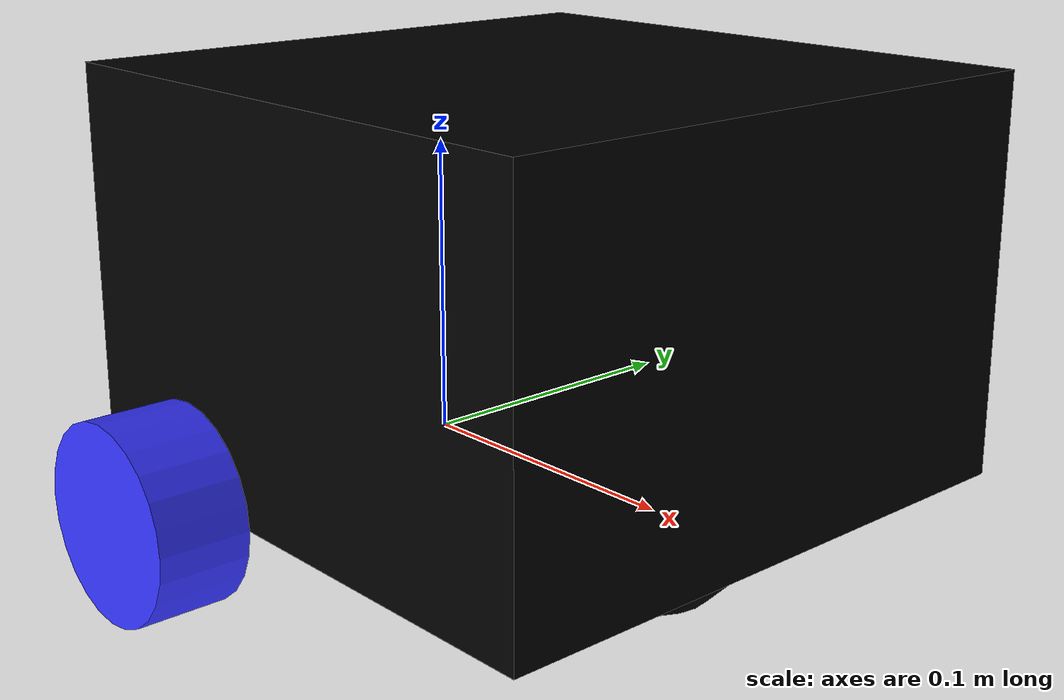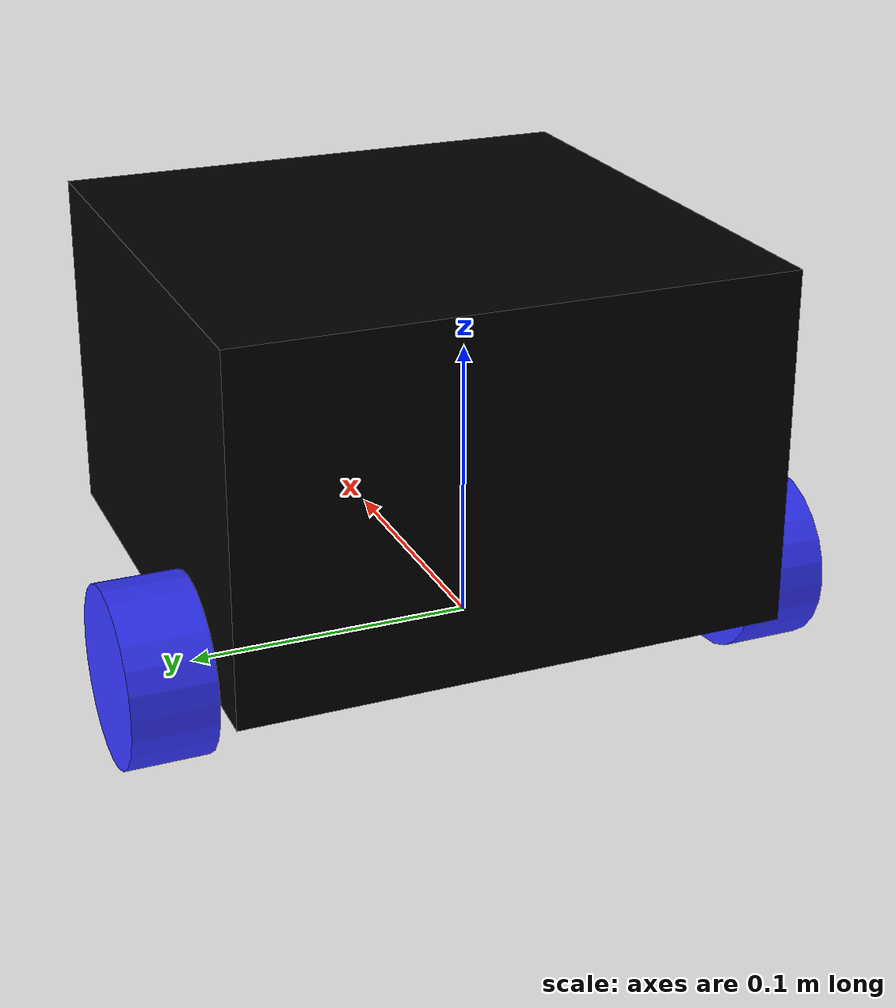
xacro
<?xml version="1.0"?>
<robot xmlns:xacro="http://www.ros.org/wiki/xacro" >

    <xacro:include filename="inertial_macros.xacro" />

    <material name="white" >
        <color rgba="1 1 1 1" />
    </material>
    <material name="orange" >
        <color rgba="1 0.3 0.1 1" />
    </material>
    <material name="blue" >
        <color rgba="0.2 0.2 1 1" />
    </material>
    <material name="black" >
        <color rgba="0 0 0 1" />
    </material>
    <material name="red" >
        <color rgba="1 0 0 1" />
    </material>

    <!--BASE LINK-->
    <link name="base_link"></link>

    <!--CHASSIS LINK-->
    <joint name="chassis_joint" type="fixed">
        <parent link="base_link" />
        <child link="chassis" />
        <origin xyz="-0.1 0 0" />
    </joint>

    <link name="chassis">
        <visual>
        <origin xyz="0.15 0 0.065" />
            <geometry>
                <box size="0.2 0.2 0.13" />
            </geometry>
            <material name="black" />
        </visual>
        <collision>
        <origin xyz="0.15 0 0.065" />
            <geometry>
                <box size="0.2 0.2 0.13" />
            </geometry>
        </collision>
        <xacro:inertial_box mass="0.5" x="0.2" y="0.2" z="0.13">
            <origin xyz="0.15 0 0.065" rpy="0 0 0" />
        </xacro:inertial_box>
    </link>

    <gazebo reference="chassis">
        <material>Gazebo/Black</material>
    </gazebo>

    <!--LEFT WHEEL LINK-->
    <joint name="left_wheel_joint" type="continuous">
        <parent link="base_link" />
        <child link="left_wheel" />
        <origin xyz="0 0.115 0" rpy="-${pi/2} 0 0"/>
        <axis xyz="0 0 1" />
    </joint>

    <link name="left_wheel">
        <visual>
            <geometry>
                <cylinder radius="0.032" length="0.03"/>
            </geometry>
            <material name="blue" />
        </visual>
        <collision>
            <geometry>
                <sphere radius="0.032" />
            </geometry>
        </collision>
        <xacro:inertial_cylinder mass="0.1" length="0.03" radius="0.032">
            <origin xyz="0 0 0" rpy="0 0 0" />
        </xacro:inertial_cylinder>
    </link>

    <gazebo reference="left_wheel">
        <material>Gazebo/Blue</material>
    </gazebo>

    <!--RIGHT WHEEL LINK-->
    <joint name="right_wheel_joint" type="continuous">
        <parent link="base_link" />
        <child link="right_wheel" />
        <origin xyz="0 -0.115 0" rpy="${pi/2} 0 0"/>
        <axis xyz="0 0 -1" />
    </joint>

    <link name="right_wheel">
        <visual>
            <geometry>
                <cylinder radius="0.032" length="0.03"/>
            </geometry>
            <material name="blue" />
        </visual>
        <collision>
            <geometry>
                <sphere radius="0.032" />
            </geometry>
        </collision>
        <xacro:inertial_cylinder mass="0.1" length="0.03" radius="0.032">
            <origin xyz="0 0 0" rpy="0 0 0" />
        </xacro:inertial_cylinder>
    </link>

    <gazebo reference="right_wheel">
        <material>Gazebo/Blue</material>
    </gazebo>

    <!--CASTER WHEEL LINK-->
    <joint name="caster_wheel_joint" type="fixed">
        <parent link="chassis" />
        <child link="caster_wheel" />
        <origin xyz="0.20 0 0" />
    </joint>

    <link name="caster_wheel">
        <visual>
            <geometry>
                <sphere radius="0.032" />
            </geometry>
            <material name="black" />
        </visual>
        <collision>
            <geometry>
                <sphere radius="0.032" />
            </geometry>
        </collision>
        <xacro:inertial_sphere mass="0.1" radius="0.032">
            <origin xyz="0 0 0" rpy="0 0 0" />
        </xacro:inertial_sphere>
    </link>

    <gazebo reference="caster_wheel">
        <material>Gazebo/Black</material>
        <mu1 value="0.001" />
        <mu2 value="0.001" />
    </gazebo>

</robot>
